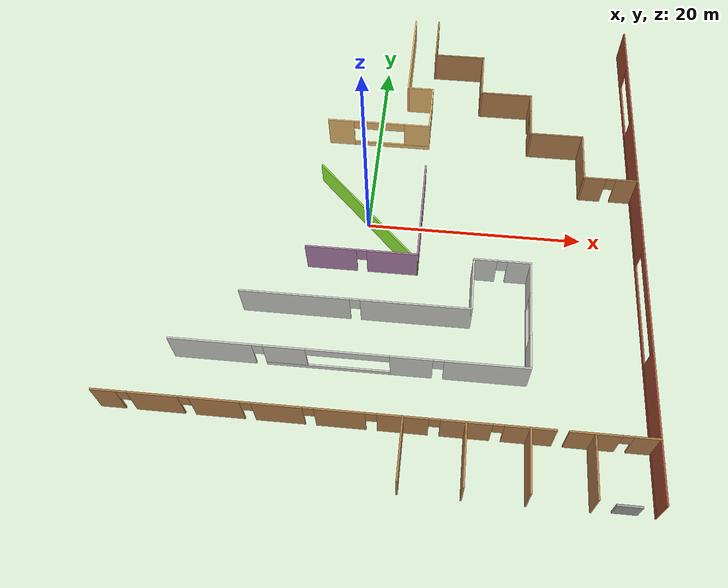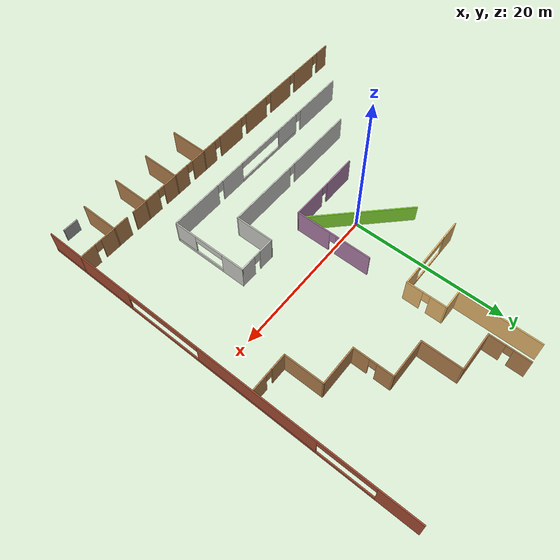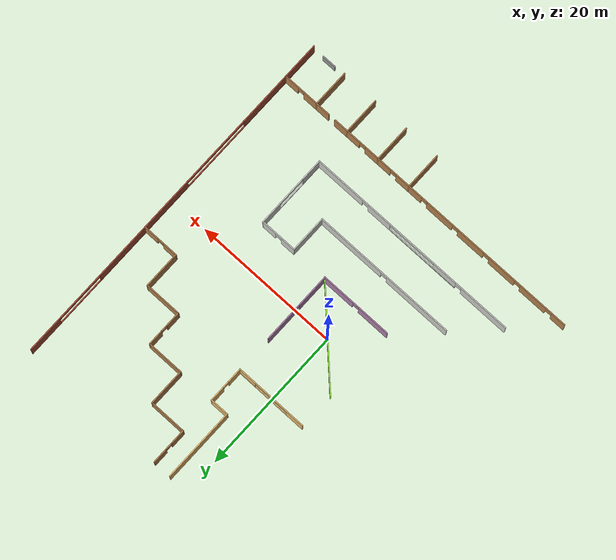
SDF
<sdf version="1.7">
 <model name="office__space">
  <pose>-0.015532 -0.015532 0 0 -0 0</pose>
  <link name="Wall_1">
   <pose>25.0155 0.015532 0 0 -0 -1.5708</pose>
   <visual name="Wall_1_Visual_0">
    <pose>-22.5375 0 1.75 0 -0 0</pose>
    <geometry><box><size>5.075 0.15 3.5</size></box></geometry>
    <material>
     <script><uri>file://media/materials/scripts/gazebo.material</uri><name>Gazebo/Bricks</name></script>
     <ambient>1 1 1 1</ambient>
    </material>
    <meta><layer>0</layer></meta>
   </visual>
   <collision name="Wall_1_Collision_0">
    <geometry><box><size>5.075 0.15 3.5</size></box></geometry>
    <pose>-22.5375 0 1.75 0 -0 0</pose>
   </collision>
   <visual name="Wall_1_Visual_1">
    <pose>2.5375 0 0.25 0 -0 0</pose>
    <geometry><box><size>45.075 0.15 0.5</size></box></geometry>
    <material>
     <script><uri>file://media/materials/scripts/gazebo.material</uri><name>Gazebo/Bricks</name></script>
     <ambient>1 1 1 1</ambient>
    </material>
    <meta><layer>0</layer></meta>
   </visual>
   <collision name="Wall_1_Collision_1">
    <geometry><box><size>45.075 0.15 0.5</size></box></geometry>
    <pose>2.5375 0 0.25 0 -0 0</pose>
   </collision>
   <visual name="Wall_1_Visual_2">
    <pose>-5.25 0 2 0 -0 0</pose>
    <geometry><box><size>15.5 0.15 3</size></box></geometry>
    <material>
     <script><uri>file://media/materials/scripts/gazebo.material</uri><name>Gazebo/Bricks</name></script>
     <ambient>1 1 1 1</ambient>
    </material>
    <meta><layer>0</layer></meta>
   </visual>
   <collision name="Wall_1_Collision_2">
    <geometry><box><size>15.5 0.15 3</size></box></geometry>
    <pose>-5.25 0 2 0 -0 0</pose>
   </collision>
   <visual name="Wall_1_Visual_3">
    <pose>18.7875 0 2 0 -0 0</pose>
    <geometry><box><size>12.575 0.15 3</size></box></geometry>
    <material>
     <script><uri>file://media/materials/scripts/gazebo.material</uri><name>Gazebo/Bricks</name></script>
     <ambient>1 1 1 1</ambient>
    </material>
    <meta><layer>0</layer></meta>
   </visual>
   <collision name="Wall_1_Collision_3">
    <geometry><box><size>12.575 0.15 3</size></box></geometry>
    <pose>18.7875 0 2 0 -0 0</pose>
   </collision>
   <visual name="Wall_1_Visual_4">
    <pose>-16.5 0 3 0 -0 0</pose>
    <geometry><box><size>7 0.15 1</size></box></geometry>
    <material>
     <script><uri>file://media/materials/scripts/gazebo.material</uri><name>Gazebo/Bricks</name></script>
     <ambient>1 1 1 1</ambient>
    </material>
    <meta><layer>0</layer></meta>
   </visual>
   <collision name="Wall_1_Collision_4">
    <geometry><box><size>7 0.15 1</size></box></geometry>
    <pose>-16.5 0 3 0 -0 0</pose>
   </collision>
   <visual name="Wall_1_Visual_5">
    <pose>7.5 0 3 0 -0 0</pose>
    <geometry><box><size>10 0.15 1</size></box></geometry>
    <material>
     <script><uri>file://media/materials/scripts/gazebo.material</uri><name>Gazebo/Bricks</name></script>
     <ambient>1 1 1 1</ambient>
    </material>
    <meta><layer>0</layer></meta>
   </visual>
   <collision name="Wall_1_Collision_5">
    <geometry><box><size>10 0.15 1</size></box></geometry>
    <pose>7.5 0 3 0 -0 0</pose>
   </collision>
  </link>
  <link name="Wall_21">
   <collision name="Wall_21_Collision">
    <geometry><box><size>5.15 0.15 3.5</size></box></geometry>
    <pose>0 0 1.75 0 -0 0</pose>
   </collision>
   <visual name="Wall_21_Visual">
    <pose>0 0 1.75 0 -0 0</pose>
    <geometry><box><size>5.15 0.15 3.5</size></box></geometry>
    <material>
     <script><uri>file://media/materials/scripts/gazebo.material</uri><name>Gazebo/Wood</name></script>
     <ambient>1 1 1 1</ambient>
    </material>
    <meta><layer>0</layer></meta>
   </visual>
   <pose>20.0155 -22.4845 0 0 -0 1.5708</pose>
  </link>
  <link name="Wall_23">
   <collision name="Wall_23_Collision">
    <geometry><box><size>5.15 0.15 3.5</size></box></geometry>
    <pose>0 0 1.75 0 -0 0</pose>
   </collision>
   <visual name="Wall_23_Visual">
    <pose>0 0 1.75 0 -0 0</pose>
    <geometry><box><size>5.15 0.15 3.5</size></box></geometry>
    <material>
     <script><uri>file://media/materials/scripts/gazebo.material</uri><name>Gazebo/Wood</name></script>
     <ambient>1 1 1 1</ambient>
    </material>
    <meta><layer>0</layer></meta>
   </visual>
   <pose>15.0155 -22.4845 0 0 -0 1.5708</pose>
  </link>
  <link name="Wall_25">
   <collision name="Wall_25_Collision">
    <geometry><box><size>5.15 0.15 3.5</size></box></geometry>
    <pose>0 0 1.75 0 -0 0</pose>
   </collision>
   <visual name="Wall_25_Visual">
    <pose>0 0 1.75 0 -0 0</pose>
    <geometry><box><size>5.15 0.15 3.5</size></box></geometry>
    <material>
     <script><uri>file://media/materials/scripts/gazebo.material</uri><name>Gazebo/Wood</name></script>
     <ambient>1 1 1 1</ambient>
    </material>
    <meta><layer>0</layer></meta>
   </visual>
   <pose>10.0155 -22.4845 0 0 -0 1.5708</pose>
  </link>
  <link name="Wall_27">
   <collision name="Wall_27_Collision">
    <geometry><box><size>5.15 0.15 3.5</size></box></geometry>
    <pose>0 0 1.75 0 -0 0</pose>
   </collision>
   <visual name="Wall_27_Visual">
    <pose>0 0 1.75 0 -0 0</pose>
    <geometry><box><size>5.15 0.15 3.5</size></box></geometry>
    <material>
     <script><uri>file://media/materials/scripts/gazebo.material</uri><name>Gazebo/Wood</name></script>
     <ambient>1 1 1 1</ambient>
    </material>
    <meta><layer>0</layer></meta>
   </visual>
   <pose>5.01553 -22.4845 0 0 -0 1.5708</pose>
  </link>
  <link name="Wall_39">
   <pose>0.015532 -4.98447 0 0 -0 0</pose>
   <visual name="Wall_39_Visual_0">
    <pose>-2.7625 0 1.75 0 -0 0</pose>
    <geometry><box><size>4.625 0.15 3.5</size></box></geometry>
    <material>
     <script><uri>file://media/materials/scripts/gazebo.material</uri><name>Gazebo/Grey</name></script>
     <ambient>0.678431 0.498039 0.658824 1</ambient>
    </material>
    <meta><layer>0</layer></meta>
   </visual>
   <collision name="Wall_39_Collision_0">
    <geometry><box><size>4.625 0.15 3.5</size></box></geometry>
    <pose>-2.7625 0 1.75 0 -0 0</pose>
   </collision>
   <visual name="Wall_39_Visual_1">
    <pose>2.7625 0 1.75 0 -0 0</pose>
    <geometry><box><size>4.625 0.15 3.5</size></box></geometry>
    <material>
     <script><uri>file://media/materials/scripts/gazebo.material</uri><name>Gazebo/Grey</name></script>
     <ambient>0.678431 0.498039 0.658824 1</ambient>
    </material>
    <meta><layer>0</layer></meta>
   </visual>
   <collision name="Wall_39_Collision_1">
    <geometry><box><size>4.625 0.15 3.5</size></box></geometry>
    <pose>2.7625 0 1.75 0 -0 0</pose>
   </collision>
   <visual name="Wall_39_Visual_2">
    <pose>0 0 2.75 0 -0 0</pose>
    <geometry><box><size>0.9 0.15 1.5</size></box></geometry>
    <material>
     <script><uri>file://media/materials/scripts/gazebo.material</uri><name>Gazebo/Grey</name></script>
     <ambient>0.678431 0.498039 0.658824 1</ambient>
    </material>
    <meta><layer>0</layer></meta>
   </visual>
   <collision name="Wall_39_Collision_2">
    <geometry><box><size>0.9 0.15 1.5</size></box></geometry>
    <pose>0 0 2.75 0 -0 0</pose>
   </collision>
  </link>
  <link name="Wall_40">
   <collision name="Wall_40_Collision">
    <geometry><box><size>14.2921 0.15 2.5</size></box></geometry>
    <pose>0 0 1.25 0 -0 0</pose>
   </collision>
   <visual name="Wall_40_Visual">
    <pose>0 0 1.25 0 -0 0</pose>
    <geometry><box><size>14.2921 0.15 2.5</size></box></geometry>
    <material>
     <script><uri>file://media/materials/scripts/gazebo.material</uri><name>Gazebo/Grey</name></script>
     <ambient>0.541176 0.886275 0.203922 1</ambient>
    </material>
    <meta><layer>0</layer></meta>
   </visual>
   <pose>0.015532 0.015532 0 0 -0 2.35619</pose>
  </link>
  <link name="Wall_43">
   <pose>5.01553 0.015532 0 0 -0 -1.5708</pose>
   <visual name="Wall_43_Visual_0">
    <pose>-2.7625 0 1.75 0 -0 0</pose>
    <geometry><box><size>4.625 0.15 3.5</size></box></geometry>
    <material>
     <script><uri>file://media/materials/scripts/gazebo.material</uri><name>Gazebo/Grey</name></script>
     <ambient>0.678431 0.498039 0.658824 1</ambient>
    </material>
    <meta><layer>0</layer></meta>
   </visual>
   <collision name="Wall_43_Collision_0">
    <geometry><box><size>4.625 0.15 3.5</size></box></geometry>
    <pose>-2.7625 0 1.75 0 -0 0</pose>
   </collision>
   <visual name="Wall_43_Visual_1">
    <pose>2.7625 0 1.75 0 -0 0</pose>
    <geometry><box><size>4.625 0.15 3.5</size></box></geometry>
    <material>
     <script><uri>file://media/materials/scripts/gazebo.material</uri><name>Gazebo/Grey</name></script>
     <ambient>0.678431 0.498039 0.658824 1</ambient>
    </material>
    <meta><layer>0</layer></meta>
   </visual>
   <collision name="Wall_43_Collision_1">
    <geometry><box><size>4.625 0.15 3.5</size></box></geometry>
    <pose>2.7625 0 1.75 0 -0 0</pose>
   </collision>
   <visual name="Wall_43_Visual_2">
    <pose>0 0 2.75 0 -0 0</pose>
    <geometry><box><size>0.9 0.15 1.5</size></box></geometry>
    <material>
     <script><uri>file://media/materials/scripts/gazebo.material</uri><name>Gazebo/Grey</name></script>
     <ambient>0.678431 0.498039 0.658824 1</ambient>
    </material>
    <meta><layer>0</layer></meta>
   </visual>
   <collision name="Wall_43_Collision_2">
    <geometry><box><size>0.9 0.15 1.5</size></box></geometry>
    <pose>0 0 2.75 0 -0 0</pose>
   </collision>
  </link>
  <link name="Wall_49">
   <pose>22.5155 5.01553 0 0 -0 3.14159</pose>
   <visual name="Wall_49_Visual_0">
    <pose>-1.5125 0 1.75 0 -0 0</pose>
    <geometry><box><size>2.125 0.15 3.5</size></box></geometry>
    <material>
     <script><uri>file://media/materials/scripts/gazebo.material</uri><name>Gazebo/Wood</name></script>
     <ambient>1 1 1 1</ambient>
    </material>
    <meta><layer>0</layer></meta>
   </visual>
   <collision name="Wall_49_Collision_0">
    <geometry><box><size>2.125 0.15 3.5</size></box></geometry>
    <pose>-1.5125 0 1.75 0 -0 0</pose>
   </collision>
   <visual name="Wall_49_Visual_1">
    <pose>1.5125 0 1.75 0 -0 0</pose>
    <geometry><box><size>2.125 0.15 3.5</size></box></geometry>
    <material>
     <script><uri>file://media/materials/scripts/gazebo.material</uri><name>Gazebo/Wood</name></script>
     <ambient>1 1 1 1</ambient>
    </material>
    <meta><layer>0</layer></meta>
   </visual>
   <collision name="Wall_49_Collision_1">
    <geometry><box><size>2.125 0.15 3.5</size></box></geometry>
    <pose>1.5125 0 1.75 0 -0 0</pose>
   </collision>
   <visual name="Wall_49_Visual_2">
    <pose>-0 0 2.75 0 -0 0</pose>
    <geometry><box><size>0.9 0.15 1.5</size></box></geometry>
    <material>
     <script><uri>file://media/materials/scripts/gazebo.material</uri><name>Gazebo/Wood</name></script>
     <ambient>1 1 1 1</ambient>
    </material>
    <meta><layer>0</layer></meta>
   </visual>
   <collision name="Wall_49_Collision_2">
    <geometry><box><size>0.9 0.15 1.5</size></box></geometry>
    <pose>-0 0 2.75 0 -0 0</pose>
   </collision>
  </link>
  <link name="Wall_50">
   <collision name="Wall_50_Collision">
    <geometry><box><size>5.15 0.15 3.5</size></box></geometry>
    <pose>0 0 1.75 0 -0 0</pose>
   </collision>
   <visual name="Wall_50_Visual">
    <pose>0 0 1.75 0 -0 0</pose>
    <geometry><box><size>5.15 0.15 3.5</size></box></geometry>
    <material>
     <script><uri>file://media/materials/scripts/gazebo.material</uri><name>Gazebo/Wood</name></script>
     <ambient>1 1 1 1</ambient>
    </material>
    <meta><layer>0</layer></meta>
   </visual>
   <pose>20.0155 7.51553 0 0 -0 1.5708</pose>
  </link>
  <link name="Wall_51">
   <collision name="Wall_51_Collision">
    <geometry><box><size>5.15 0.15 3.5</size></box></geometry>
    <pose>0 0 1.75 0 -0 0</pose>
   </collision>
   <visual name="Wall_51_Visual">
    <pose>0 0 1.75 0 -0 0</pose>
    <geometry><box><size>5.15 0.15 3.5</size></box></geometry>
    <material>
     <script><uri>file://media/materials/scripts/gazebo.material</uri><name>Gazebo/Wood</name></script>
     <ambient>1 1 1 1</ambient>
    </material>
    <meta><layer>0</layer></meta>
   </visual>
   <pose>17.5155 10.0155 0 0 -0 3.14159</pose>
  </link>
  <link name="Wall_52">
   <pose>15.0155 12.5155 0 0 -0 1.5708</pose>
   <visual name="Wall_52_Visual_0">
    <pose>-1.5125 0 1.75 0 -0 0</pose>
    <geometry><box><size>2.125 0.15 3.5</size></box></geometry>
    <material>
     <script><uri>file://media/materials/scripts/gazebo.material</uri><name>Gazebo/Wood</name></script>
     <ambient>1 1 1 1</ambient>
    </material>
    <meta><layer>0</layer></meta>
   </visual>
   <collision name="Wall_52_Collision_0">
    <geometry><box><size>2.125 0.15 3.5</size></box></geometry>
    <pose>-1.5125 0 1.75 0 -0 0</pose>
   </collision>
   <visual name="Wall_52_Visual_1">
    <pose>1.5125 0 1.75 0 -0 0</pose>
    <geometry><box><size>2.125 0.15 3.5</size></box></geometry>
    <material>
     <script><uri>file://media/materials/scripts/gazebo.material</uri><name>Gazebo/Wood</name></script>
     <ambient>1 1 1 1</ambient>
    </material>
    <meta><layer>0</layer></meta>
   </visual>
   <collision name="Wall_52_Collision_1">
    <geometry><box><size>2.125 0.15 3.5</size></box></geometry>
    <pose>1.5125 0 1.75 0 -0 0</pose>
   </collision>
   <visual name="Wall_52_Visual_2">
    <pose>-0 0 2.75 0 -0 0</pose>
    <geometry><box><size>0.9 0.15 1.5</size></box></geometry>
    <material>
     <script><uri>file://media/materials/scripts/gazebo.material</uri><name>Gazebo/Wood</name></script>
     <ambient>1 1 1 1</ambient>
    </material>
    <meta><layer>0</layer></meta>
   </visual>
   <collision name="Wall_52_Collision_2">
    <geometry><box><size>0.9 0.15 1.5</size></box></geometry>
    <pose>-0 0 2.75 0 -0 0</pose>
   </collision>
  </link>
  <link name="Wall_53">
   <collision name="Wall_53_Collision">
    <geometry><box><size>5.15 0.15 3.5</size></box></geometry>
    <pose>0 0 1.75 0 -0 0</pose>
   </collision>
   <visual name="Wall_53_Visual">
    <pose>0 0 1.75 0 -0 0</pose>
    <geometry><box><size>5.15 0.15 3.5</size></box></geometry>
    <material>
     <script><uri>file://media/materials/scripts/gazebo.material</uri><name>Gazebo/Wood</name></script>
     <ambient>1 1 1 1</ambient>
    </material>
    <meta><layer>0</layer></meta>
   </visual>
   <pose>12.5155 15.0155 0 0 -0 3.14159</pose>
  </link>
  <link name="Wall_54">
   <collision name="Wall_54_Collision">
    <geometry><box><size>5.15 0.15 3.5</size></box></geometry>
    <pose>0 0 1.75 0 -0 0</pose>
   </collision>
   <visual name="Wall_54_Visual">
    <pose>0 0 1.75 0 -0 0</pose>
    <geometry><box><size>5.15 0.15 3.5</size></box></geometry>
    <material>
     <script><uri>file://media/materials/scripts/gazebo.material</uri><name>Gazebo/Wood</name></script>
     <ambient>1 1 1 1</ambient>
    </material>
    <meta><layer>0</layer></meta>
   </visual>
   <pose>10.0155 17.5155 0 0 -0 1.5708</pose>
  </link>
  <link name="Wall_55">
   <collision name="Wall_55_Collision">
    <geometry><box><size>5.15 0.15 3.5</size></box></geometry>
    <pose>0 0 1.75 0 -0 0</pose>
   </collision>
   <visual name="Wall_55_Visual">
    <pose>0 0 1.75 0 -0 0</pose>
    <geometry><box><size>5.15 0.15 3.5</size></box></geometry>
    <material>
     <script><uri>file://media/materials/scripts/gazebo.material</uri><name>Gazebo/Wood</name></script>
     <ambient>1 1 1 1</ambient>
    </material>
    <meta><layer>0</layer></meta>
   </visual>
   <pose>7.51553 20.0155 0 0 -0 3.14159</pose>
  </link>
  <link name="Wall_56">
   <pose>5.01553 22.5155 0 0 -0 1.5708</pose>
   <visual name="Wall_56_Visual_0">
    <pose>-1.5125 0 1.75 0 -0 0</pose>
    <geometry><box><size>2.125 0.15 3.5</size></box></geometry>
    <material>
     <script><uri>file://media/materials/scripts/gazebo.material</uri><name>Gazebo/Wood</name></script>
     <ambient>1 1 1 1</ambient>
    </material>
    <meta><layer>0</layer></meta>
   </visual>
   <collision name="Wall_56_Collision_0">
    <geometry><box><size>2.125 0.15 3.5</size></box></geometry>
    <pose>-1.5125 0 1.75 0 -0 0</pose>
   </collision>
   <visual name="Wall_56_Visual_1">
    <pose>1.5125 0 1.75 0 -0 0</pose>
    <geometry><box><size>2.125 0.15 3.5</size></box></geometry>
    <material>
     <script><uri>file://media/materials/scripts/gazebo.material</uri><name>Gazebo/Wood</name></script>
     <ambient>1 1 1 1</ambient>
    </material>
    <meta><layer>0</layer></meta>
   </visual>
   <collision name="Wall_56_Collision_1">
    <geometry><box><size>2.125 0.15 3.5</size></box></geometry>
    <pose>1.5125 0 1.75 0 -0 0</pose>
   </collision>
   <visual name="Wall_56_Visual_2">
    <pose>-0 0 2.75 0 -0 0</pose>
    <geometry><box><size>0.9 0.15 1.5</size></box></geometry>
    <material>
     <script><uri>file://media/materials/scripts/gazebo.material</uri><name>Gazebo/Wood</name></script>
     <ambient>1 1 1 1</ambient>
    </material>
    <meta><layer>0</layer></meta>
   </visual>
   <collision name="Wall_56_Collision_2">
    <geometry><box><size>0.9 0.15 1.5</size></box></geometry>
    <pose>-0 0 2.75 0 -0 0</pose>
   </collision>
  </link>
  <link name="Wall_6">
   <pose>2.51553 -19.9845 0 0 -0 3.14159</pose>
   <visual name="Wall_6_Visual_0">
    <pose>-21.5125 0 1.75 0 -0 0</pose>
    <geometry><box><size>2.125 0.15 3.5</size></box></geometry>
    <material>
     <script><uri>file://media/materials/scripts/gazebo.material</uri><name>Gazebo/Wood</name></script>
     <ambient>1 1 1 1</ambient>
    </material>
    <meta><layer>0</layer></meta>
   </visual>
   <collision name="Wall_6_Collision_0">
    <geometry><box><size>2.125 0.15 3.5</size></box></geometry>
    <pose>-21.5125 0 1.75 0 -0 0</pose>
   </collision>
   <visual name="Wall_6_Visual_1">
    <pose>-17.5 0 1.75 0 -0 0</pose>
    <geometry><box><size>4.1 0.15 3.5</size></box></geometry>
    <material>
     <script><uri>file://media/materials/scripts/gazebo.material</uri><name>Gazebo/Wood</name></script>
     <ambient>1 1 1 1</ambient>
    </material>
    <meta><layer>0</layer></meta>
   </visual>
   <collision name="Wall_6_Collision_1">
    <geometry><box><size>4.1 0.15 3.5</size></box></geometry>
    <pose>-17.5 0 1.75 0 -0 0</pose>
   </collision>
   <visual name="Wall_6_Visual_2">
    <pose>-12.5 0 1.75 0 -0 0</pose>
    <geometry><box><size>4.1 0.15 3.5</size></box></geometry>
    <material>
     <script><uri>file://media/materials/scripts/gazebo.material</uri><name>Gazebo/Wood</name></script>
     <ambient>1 1 1 1</ambient>
    </material>
    <meta><layer>0</layer></meta>
   </visual>
   <collision name="Wall_6_Collision_2">
    <geometry><box><size>4.1 0.15 3.5</size></box></geometry>
    <pose>-12.5 0 1.75 0 -0 0</pose>
   </collision>
   <visual name="Wall_6_Visual_3">
    <pose>-7.50424 0 1.75 0 -0 0</pose>
    <geometry><box><size>4.09152 0.15 3.5</size></box></geometry>
    <material>
     <script><uri>file://media/materials/scripts/gazebo.material</uri><name>Gazebo/Wood</name></script>
     <ambient>1 1 1 1</ambient>
    </material>
    <meta><layer>0</layer></meta>
   </visual>
   <collision name="Wall_6_Collision_3">
    <geometry><box><size>4.09152 0.15 3.5</size></box></geometry>
    <pose>-7.50424 0 1.75 0 -0 0</pose>
   </collision>
   <visual name="Wall_6_Visual_4">
    <pose>-2.50271 0 1.75 0 -0 0</pose>
    <geometry><box><size>4.11154 0.15 3.5</size></box></geometry>
    <material>
     <script><uri>file://media/materials/scripts/gazebo.material</uri><name>Gazebo/Wood</name></script>
     <ambient>1 1 1 1</ambient>
    </material>
    <meta><layer>0</layer></meta>
   </visual>
   <collision name="Wall_6_Collision_4">
    <geometry><box><size>4.11154 0.15 3.5</size></box></geometry>
    <pose>-2.50271 0 1.75 0 -0 0</pose>
   </collision>
   <visual name="Wall_6_Visual_5">
    <pose>2.50153 0 1.75 0 -0 0</pose>
    <geometry><box><size>4.09694 0.15 3.5</size></box></geometry>
    <material>
     <script><uri>file://media/materials/scripts/gazebo.material</uri><name>Gazebo/Wood</name></script>
     <ambient>1 1 1 1</ambient>
    </material>
    <meta><layer>0</layer></meta>
   </visual>
   <collision name="Wall_6_Collision_5">
    <geometry><box><size>4.09694 0.15 3.5</size></box></geometry>
    <pose>2.50153 0 1.75 0 -0 0</pose>
   </collision>
   <visual name="Wall_6_Visual_6">
    <pose>7.5 0 1.75 0 -0 0</pose>
    <geometry><box><size>4.1 0.15 3.5</size></box></geometry>
    <material>
     <script><uri>file://media/materials/scripts/gazebo.material</uri><name>Gazebo/Wood</name></script>
     <ambient>1 1 1 1</ambient>
    </material>
    <meta><layer>0</layer></meta>
   </visual>
   <collision name="Wall_6_Collision_6">
    <geometry><box><size>4.1 0.15 3.5</size></box></geometry>
    <pose>7.5 0 1.75 0 -0 0</pose>
   </collision>
   <visual name="Wall_6_Visual_7">
    <pose>12.5 0 1.75 0 -0 0</pose>
    <geometry><box><size>4.1 0.15 3.5</size></box></geometry>
    <material>
     <script><uri>file://media/materials/scripts/gazebo.material</uri><name>Gazebo/Wood</name></script>
     <ambient>1 1 1 1</ambient>
    </material>
    <meta><layer>0</layer></meta>
   </visual>
   <collision name="Wall_6_Collision_7">
    <geometry><box><size>4.1 0.15 3.5</size></box></geometry>
    <pose>12.5 0 1.75 0 -0 0</pose>
   </collision>
   <visual name="Wall_6_Visual_8">
    <pose>17.5 0 1.75 0 -0 0</pose>
    <geometry><box><size>4.1 0.15 3.5</size></box></geometry>
    <material>
     <script><uri>file://media/materials/scripts/gazebo.material</uri><name>Gazebo/Wood</name></script>
     <ambient>1 1 1 1</ambient>
    </material>
    <meta><layer>0</layer></meta>
   </visual>
   <collision name="Wall_6_Collision_8">
    <geometry><box><size>4.1 0.15 3.5</size></box></geometry>
    <pose>17.5 0 1.75 0 -0 0</pose>
   </collision>
   <visual name="Wall_6_Visual_9">
    <pose>21.5125 0 1.75 0 -0 0</pose>
    <geometry><box><size>2.125 0.15 3.5</size></box></geometry>
    <material>
     <script><uri>file://media/materials/scripts/gazebo.material</uri><name>Gazebo/Wood</name></script>
     <ambient>1 1 1 1</ambient>
    </material>
    <meta><layer>0</layer></meta>
   </visual>
   <collision name="Wall_6_Collision_9">
    <geometry><box><size>2.125 0.15 3.5</size></box></geometry>
    <pose>21.5125 0 1.75 0 -0 0</pose>
   </collision>
   <visual name="Wall_6_Visual_10">
    <pose>-20 0 2.75 0 -0 0</pose>
    <geometry><box><size>0.9 0.15 1.5</size></box></geometry>
    <material>
     <script><uri>file://media/materials/scripts/gazebo.material</uri><name>Gazebo/Wood</name></script>
     <ambient>1 1 1 1</ambient>
    </material>
    <meta><layer>0</layer></meta>
   </visual>
   <collision name="Wall_6_Collision_10">
    <geometry><box><size>0.9 0.15 1.5</size></box></geometry>
    <pose>-20 0 2.75 0 -0 0</pose>
   </collision>
   <visual name="Wall_6_Visual_11">
    <pose>-15.45 0 2.75 0 -0 0</pose>
    <geometry><box><size>0 0.15 1.5</size></box></geometry>
    <material>
     <script><uri>file://media/materials/scripts/gazebo.material</uri><name>Gazebo/Wood</name></script>
     <ambient>1 1 1 1</ambient>
    </material>
    <meta><layer>0</layer></meta>
   </visual>
   <collision name="Wall_6_Collision_11">
    <geometry><box><size>0 0.15 1.5</size></box></geometry>
    <pose>-15.45 0 2.75 0 -0 0</pose>
   </collision>
   <visual name="Wall_6_Visual_12">
    <pose>-10 0 2.75 0 -0 0</pose>
    <geometry><box><size>0.9 0.15 1.5</size></box></geometry>
    <material>
     <script><uri>file://media/materials/scripts/gazebo.material</uri><name>Gazebo/Wood</name></script>
     <ambient>1 1 1 1</ambient>
    </material>
    <meta><layer>0</layer></meta>
   </visual>
   <collision name="Wall_6_Collision_12">
    <geometry><box><size>0.9 0.15 1.5</size></box></geometry>
    <pose>-10 0 2.75 0 -0 0</pose>
   </collision>
   <visual name="Wall_6_Visual_13">
    <pose>-5.00848 0 2.75 0 -0 0</pose>
    <geometry><box><size>0.9 0.15 1.5</size></box></geometry>
    <material>
     <script><uri>file://media/materials/scripts/gazebo.material</uri><name>Gazebo/Wood</name></script>
     <ambient>1 1 1 1</ambient>
    </material>
    <meta><layer>0</layer></meta>
   </visual>
   <collision name="Wall_6_Collision_13">
    <geometry><box><size>0.9 0.15 1.5</size></box></geometry>
    <pose>-5.00848 0 2.75 0 -0 0</pose>
   </collision>
   <visual name="Wall_6_Visual_14">
    <pose>0.003065 0 2.75 0 -0 0</pose>
    <geometry><box><size>0.9 0.15 1.5</size></box></geometry>
    <material>
     <script><uri>file://media/materials/scripts/gazebo.material</uri><name>Gazebo/Wood</name></script>
     <ambient>1 1 1 1</ambient>
    </material>
    <meta><layer>0</layer></meta>
   </visual>
   <collision name="Wall_6_Collision_14">
    <geometry><box><size>0.9 0.15 1.5</size></box></geometry>
    <pose>0.003065 0 2.75 0 -0 0</pose>
   </collision>
   <visual name="Wall_6_Visual_15">
    <pose>5 0 2.75 0 -0 0</pose>
    <geometry><box><size>0.9 0.15 1.5</size></box></geometry>
    <material>
     <script><uri>file://media/materials/scripts/gazebo.material</uri><name>Gazebo/Wood</name></script>
     <ambient>1 1 1 1</ambient>
    </material>
    <meta><layer>0</layer></meta>
   </visual>
   <collision name="Wall_6_Collision_15">
    <geometry><box><size>0.9 0.15 1.5</size></box></geometry>
    <pose>5 0 2.75 0 -0 0</pose>
   </collision>
   <visual name="Wall_6_Visual_16">
    <pose>10 0 2.75 0 -0 0</pose>
    <geometry><box><size>0.9 0.15 1.5</size></box></geometry>
    <material>
     <script><uri>file://media/materials/scripts/gazebo.material</uri><name>Gazebo/Wood</name></script>
     <ambient>1 1 1 1</ambient>
    </material>
    <meta><layer>0</layer></meta>
   </visual>
   <collision name="Wall_6_Collision_16">
    <geometry><box><size>0.9 0.15 1.5</size></box></geometry>
    <pose>10 0 2.75 0 -0 0</pose>
   </collision>
   <visual name="Wall_6_Visual_17">
    <pose>15 0 2.75 0 -0 0</pose>
    <geometry><box><size>0.9 0.15 1.5</size></box></geometry>
    <material>
     <script><uri>file://media/materials/scripts/gazebo.material</uri><name>Gazebo/Wood</name></script>
     <ambient>1 1 1 1</ambient>
    </material>
    <meta><layer>0</layer></meta>
   </visual>
   <collision name="Wall_6_Collision_17">
    <geometry><box><size>0.9 0.15 1.5</size></box></geometry>
    <pose>15 0 2.75 0 -0 0</pose>
   </collision>
   <visual name="Wall_6_Visual_18">
    <pose>20 0 2.75 0 -0 0</pose>
    <geometry><box><size>0.9 0.15 1.5</size></box></geometry>
    <material>
     <script><uri>file://media/materials/scripts/gazebo.material</uri><name>Gazebo/Wood</name></script>
     <ambient>1 1 1 1</ambient>
    </material>
    <meta><layer>0</layer></meta>
   </visual>
   <collision name="Wall_6_Collision_18">
    <geometry><box><size>0.9 0.15 1.5</size></box></geometry>
    <pose>20 0 2.75 0 -0 0</pose>
   </collision>
  </link>
  <link name="Wall_62">
   <pose>0.015532 -9.98447 0 0 -0 0</pose>
   <visual name="Wall_62_Visual_0">
    <pose>-5.2625 0 1.75 0 -0 0</pose>
    <geometry><box><size>9.625 0.15 3.5</size></box></geometry>
    <material>
     <script><uri>file://media/materials/scripts/gazebo.material</uri><name>Gazebo/CeilingTiled</name></script>
     <ambient>1 1 1 1</ambient>
    </material>
    <meta><layer>0</layer></meta>
   </visual>
   <collision name="Wall_62_Collision_0">
    <geometry><box><size>9.625 0.15 3.5</size></box></geometry>
    <pose>-5.2625 0 1.75 0 -0 0</pose>
   </collision>
   <visual name="Wall_62_Visual_1">
    <pose>5.2625 0 1.75 0 -0 0</pose>
    <geometry><box><size>9.625 0.15 3.5</size></box></geometry>
    <material>
     <script><uri>file://media/materials/scripts/gazebo.material</uri><name>Gazebo/CeilingTiled</name></script>
     <ambient>1 1 1 1</ambient>
    </material>
    <meta><layer>0</layer></meta>
   </visual>
   <collision name="Wall_62_Collision_1">
    <geometry><box><size>9.625 0.15 3.5</size></box></geometry>
    <pose>5.2625 0 1.75 0 -0 0</pose>
   </collision>
   <visual name="Wall_62_Visual_2">
    <pose>0 0 2.75 0 -0 0</pose>
    <geometry><box><size>0.9 0.15 1.5</size></box></geometry>
    <material>
     <script><uri>file://media/materials/scripts/gazebo.material</uri><name>Gazebo/CeilingTiled</name></script>
     <ambient>1 1 1 1</ambient>
    </material>
    <meta><layer>0</layer></meta>
   </visual>
   <collision name="Wall_62_Collision_2">
    <geometry><box><size>0.9 0.15 1.5</size></box></geometry>
    <pose>0 0 2.75 0 -0 0</pose>
   </collision>
  </link>
  <link name="Wall_63">
   <collision name="Wall_63_Collision">
    <geometry><box><size>5.15 0.15 3.5</size></box></geometry>
    <pose>0 0 1.75 0 -0 0</pose>
   </collision>
   <visual name="Wall_63_Visual">
    <pose>0 0 1.75 0 -0 0</pose>
    <geometry><box><size>5.15 0.15 3.5</size></box></geometry>
    <material>
     <script><uri>file://media/materials/scripts/gazebo.material</uri><name>Gazebo/CeilingTiled</name></script>
     <ambient>1 1 1 1</ambient>
    </material>
    <meta><layer>0</layer></meta>
   </visual>
   <pose>10.0155 -7.48447 0 0 -0 1.5708</pose>
  </link>
  <link name="Wall_64">
   <pose>12.5155 -4.98447 0 0 -0 0</pose>
   <visual name="Wall_64_Visual_0">
    <pose>-1.5125 0 1.75 0 -0 0</pose>
    <geometry><box><size>2.125 0.15 3.5</size></box></geometry>
    <material>
     <script><uri>file://media/materials/scripts/gazebo.material</uri><name>Gazebo/CeilingTiled</name></script>
     <ambient>1 1 1 1</ambient>
    </material>
    <meta><layer>0</layer></meta>
   </visual>
   <collision name="Wall_64_Collision_0">
    <geometry><box><size>2.125 0.15 3.5</size></box></geometry>
    <pose>-1.5125 0 1.75 0 -0 0</pose>
   </collision>
   <visual name="Wall_64_Visual_1">
    <pose>1.5125 0 1.75 0 -0 0</pose>
    <geometry><box><size>2.125 0.15 3.5</size></box></geometry>
    <material>
     <script><uri>file://media/materials/scripts/gazebo.material</uri><name>Gazebo/CeilingTiled</name></script>
     <ambient>1 1 1 1</ambient>
    </material>
    <meta><layer>0</layer></meta>
   </visual>
   <collision name="Wall_64_Collision_1">
    <geometry><box><size>2.125 0.15 3.5</size></box></geometry>
    <pose>1.5125 0 1.75 0 -0 0</pose>
   </collision>
   <visual name="Wall_64_Visual_2">
    <pose>-0 0 2.75 0 -0 0</pose>
    <geometry><box><size>0.9 0.15 1.5</size></box></geometry>
    <material>
     <script><uri>file://media/materials/scripts/gazebo.material</uri><name>Gazebo/CeilingTiled</name></script>
     <ambient>1 1 1 1</ambient>
    </material>
    <meta><layer>0</layer></meta>
   </visual>
   <collision name="Wall_64_Collision_2">
    <geometry><box><size>0.9 0.15 1.5</size></box></geometry>
    <pose>-0 0 2.75 0 -0 0</pose>
   </collision>
  </link>
  <link name="Wall_65">
   <pose>15.0155 -9.98447 0 0 -0 -1.5708</pose>
   <visual name="Wall_65_Visual_0">
    <pose>-3.5375 0 1.75 0 -0 0</pose>
    <geometry><box><size>3.075 0.15 3.5</size></box></geometry>
    <material>
     <script><uri>file://media/materials/scripts/gazebo.material</uri><name>Gazebo/CeilingTiled</name></script>
     <ambient>1 1 1 1</ambient>
    </material>
    <meta><layer>0</layer></meta>
   </visual>
   <collision name="Wall_65_Collision_0">
    <geometry><box><size>3.075 0.15 3.5</size></box></geometry>
    <pose>-3.5375 0 1.75 0 -0 0</pose>
   </collision>
   <visual name="Wall_65_Visual_1">
    <pose>1.5375 0 0.25 0 -0 0</pose>
    <geometry><box><size>7.075 0.15 0.5</size></box></geometry>
    <material>
     <script><uri>file://media/materials/scripts/gazebo.material</uri><name>Gazebo/CeilingTiled</name></script>
     <ambient>1 1 1 1</ambient>
    </material>
    <meta><layer>0</layer></meta>
   </visual>
   <collision name="Wall_65_Collision_1">
    <geometry><box><size>7.075 0.15 0.5</size></box></geometry>
    <pose>1.5375 0 0.25 0 -0 0</pose>
   </collision>
   <visual name="Wall_65_Visual_2">
    <pose>3.5375 0 2 0 -0 0</pose>
    <geometry><box><size>3.075 0.15 3</size></box></geometry>
    <material>
     <script><uri>file://media/materials/scripts/gazebo.material</uri><name>Gazebo/CeilingTiled</name></script>
     <ambient>1 1 1 1</ambient>
    </material>
    <meta><layer>0</layer></meta>
   </visual>
   <collision name="Wall_65_Collision_2">
    <geometry><box><size>3.075 0.15 3</size></box></geometry>
    <pose>3.5375 0 2 0 -0 0</pose>
   </collision>
   <visual name="Wall_65_Visual_3">
    <pose>0 0 3 0 -0 0</pose>
    <geometry><box><size>4 0.15 1</size></box></geometry>
    <material>
     <script><uri>file://media/materials/scripts/gazebo.material</uri><name>Gazebo/CeilingTiled</name></script>
     <ambient>1 1 1 1</ambient>
    </material>
    <meta><layer>0</layer></meta>
   </visual>
   <collision name="Wall_65_Collision_3">
    <geometry><box><size>4 0.15 1</size></box></geometry>
    <pose>0 0 3 0 -0 0</pose>
   </collision>
  </link>
  <link name="Wall_66">
   <pose>0.015532 -14.9845 0 0 -0 3.14159</pose>
   <visual name="Wall_66_Visual_0">
    <pose>-11.5125 0 1.75 0 -0 0</pose>
    <geometry><box><size>7.125 0.15 3.5</size></box></geometry>
    <material>
     <script><uri>file://media/materials/scripts/gazebo.material</uri><name>Gazebo/CeilingTiled</name></script>
     <ambient>1 1 1 1</ambient>
    </material>
    <meta><layer>0</layer></meta>
   </visual>
   <collision name="Wall_66_Collision_0">
    <geometry><box><size>7.125 0.15 3.5</size></box></geometry>
    <pose>-11.5125 0 1.75 0 -0 0</pose>
   </collision>
   <visual name="Wall_66_Visual_1">
    <pose>-5.275 0 1.75 0 -0 0</pose>
    <geometry><box><size>3.55 0.15 3.5</size></box></geometry>
    <material>
     <script><uri>file://media/materials/scripts/gazebo.material</uri><name>Gazebo/CeilingTiled</name></script>
     <ambient>1 1 1 1</ambient>
    </material>
    <meta><layer>0</layer></meta>
   </visual>
   <collision name="Wall_66_Collision_1">
    <geometry><box><size>3.55 0.15 3.5</size></box></geometry>
    <pose>-5.275 0 1.75 0 -0 0</pose>
   </collision>
   <visual name="Wall_66_Visual_2">
    <pose>11.5125 0 1.75 0 -0 0</pose>
    <geometry><box><size>7.125 0.15 3.5</size></box></geometry>
    <material>
     <script><uri>file://media/materials/scripts/gazebo.material</uri><name>Gazebo/CeilingTiled</name></script>
     <ambient>1 1 1 1</ambient>
    </material>
    <meta><layer>0</layer></meta>
   </visual>
   <collision name="Wall_66_Collision_2">
    <geometry><box><size>7.125 0.15 3.5</size></box></geometry>
    <pose>11.5125 0 1.75 0 -0 0</pose>
   </collision>
   <visual name="Wall_66_Visual_3">
    <pose>1.775 0 0.25 0 -0 0</pose>
    <geometry><box><size>10.55 0.15 0.5</size></box></geometry>
    <material>
     <script><uri>file://media/materials/scripts/gazebo.material</uri><name>Gazebo/CeilingTiled</name></script>
     <ambient>1 1 1 1</ambient>
    </material>
    <meta><layer>0</layer></meta>
   </visual>
   <collision name="Wall_66_Collision_3">
    <geometry><box><size>10.55 0.15 0.5</size></box></geometry>
    <pose>1.775 0 0.25 0 -0 0</pose>
   </collision>
   <visual name="Wall_66_Visual_4">
    <pose>5.275 0 2 0 -0 0</pose>
    <geometry><box><size>3.55 0.15 3</size></box></geometry>
    <material>
     <script><uri>file://media/materials/scripts/gazebo.material</uri><name>Gazebo/CeilingTiled</name></script>
     <ambient>1 1 1 1</ambient>
    </material>
    <meta><layer>0</layer></meta>
   </visual>
   <collision name="Wall_66_Collision_4">
    <geometry><box><size>3.55 0.15 3</size></box></geometry>
    <pose>5.275 0 2 0 -0 0</pose>
   </collision>
   <visual name="Wall_66_Visual_5">
    <pose>-7.5 0 2.75 0 -0 0</pose>
    <geometry><box><size>0.9 0.15 1.5</size></box></geometry>
    <material>
     <script><uri>file://media/materials/scripts/gazebo.material</uri><name>Gazebo/CeilingTiled</name></script>
     <ambient>1 1 1 1</ambient>
    </material>
    <meta><layer>0</layer></meta>
   </visual>
   <collision name="Wall_66_Collision_5">
    <geometry><box><size>0.9 0.15 1.5</size></box></geometry>
    <pose>-7.5 0 2.75 0 -0 0</pose>
   </collision>
   <visual name="Wall_66_Visual_6">
    <pose>7.5 0 2.75 0 -0 0</pose>
    <geometry><box><size>0.9 0.15 1.5</size></box></geometry>
    <material>
     <script><uri>file://media/materials/scripts/gazebo.material</uri><name>Gazebo/CeilingTiled</name></script>
     <ambient>1 1 1 1</ambient>
    </material>
    <meta><layer>0</layer></meta>
   </visual>
   <collision name="Wall_66_Collision_6">
    <geometry><box><size>0.9 0.15 1.5</size></box></geometry>
    <pose>7.5 0 2.75 0 -0 0</pose>
   </collision>
   <visual name="Wall_66_Visual_7">
    <pose>0 0 3 0 -0 0</pose>
    <geometry><box><size>7 0.15 1</size></box></geometry>
    <material>
     <script><uri>file://media/materials/scripts/gazebo.material</uri><name>Gazebo/CeilingTiled</name></script>
     <ambient>1 1 1 1</ambient>
    </material>
    <meta><layer>0</layer></meta>
   </visual>
   <collision name="Wall_66_Collision_7">
    <geometry><box><size>7 0.15 1</size></box></geometry>
    <pose>0 0 3 0 -0 0</pose>
   </collision>
  </link>
  <link name="Wall_72">
   <pose>0.015532 10.0155 0 0 -0 0</pose>
   <visual name="Wall_72_Visual_0">
    <pose>-3.7875 0 1.75 0 -0 0</pose>
    <geometry><box><size>2.575 0.15 3.5</size></box></geometry>
    <material>
     <script><uri>file://media/materials/scripts/gazebo.material</uri><name>Gazebo/Grey</name></script>
     <ambient>0.913725 0.72549 0.431373 1</ambient>
    </material>
    <meta><layer>0</layer></meta>
   </visual>
   <collision name="Wall_72_Collision_0">
    <geometry><box><size>2.575 0.15 3.5</size></box></geometry>
    <pose>-3.7875 0 1.75 0 -0 0</pose>
   </collision>
   <visual name="Wall_72_Visual_1">
    <pose>1.2875 0 0.25 0 -0 0</pose>
    <geometry><box><size>7.575 0.15 0.5</size></box></geometry>
    <material>
     <script><uri>file://media/materials/scripts/gazebo.material</uri><name>Gazebo/Grey</name></script>
     <ambient>0.913725 0.72549 0.431373 1</ambient>
    </material>
    <meta><layer>0</layer></meta>
   </visual>
   <collision name="Wall_72_Collision_1">
    <geometry><box><size>7.575 0.15 0.5</size></box></geometry>
    <pose>1.2875 0 0.25 0 -0 0</pose>
   </collision>
   <visual name="Wall_72_Visual_2">
    <pose>3.7875 0 2 0 -0 0</pose>
    <geometry><box><size>2.575 0.15 3</size></box></geometry>
    <material>
     <script><uri>file://media/materials/scripts/gazebo.material</uri><name>Gazebo/Grey</name></script>
     <ambient>0.913725 0.72549 0.431373 1</ambient>
    </material>
    <meta><layer>0</layer></meta>
   </visual>
   <collision name="Wall_72_Collision_2">
    <geometry><box><size>2.575 0.15 3</size></box></geometry>
    <pose>3.7875 0 2 0 -0 0</pose>
   </collision>
   <visual name="Wall_72_Visual_3">
    <pose>0 0 3 0 -0 0</pose>
    <geometry><box><size>5 0.15 1</size></box></geometry>
    <material>
     <script><uri>file://media/materials/scripts/gazebo.material</uri><name>Gazebo/Grey</name></script>
     <ambient>0.913725 0.72549 0.431373 1</ambient>
    </material>
    <meta><layer>0</layer></meta>
   </visual>
   <collision name="Wall_72_Collision_3">
    <geometry><box><size>5 0.15 1</size></box></geometry>
    <pose>0 0 3 0 -0 0</pose>
   </collision>
  </link>
  <link name="Wall_73">
   <pose>5.01553 12.5155 0 0 -0 1.5708</pose>
   <visual name="Wall_73_Visual_0">
    <pose>-1.50795 0 1.75 0 -0 0</pose>
    <geometry><box><size>2.13409 0.15 3.5</size></box></geometry>
    <material>
     <script><uri>file://media/materials/scripts/gazebo.material</uri><name>Gazebo/Grey</name></script>
     <ambient>0.913725 0.72549 0.431373 1</ambient>
    </material>
    <meta><layer>0</layer></meta>
   </visual>
   <collision name="Wall_73_Collision_0">
    <geometry><box><size>2.13409 0.15 3.5</size></box></geometry>
    <pose>-1.50795 0 1.75 0 -0 0</pose>
   </collision>
   <visual name="Wall_73_Visual_1">
    <pose>1.51705 0 1.75 0 -0 0</pose>
    <geometry><box><size>2.11591 0.15 3.5</size></box></geometry>
    <material>
     <script><uri>file://media/materials/scripts/gazebo.material</uri><name>Gazebo/Grey</name></script>
     <ambient>0.913725 0.72549 0.431373 1</ambient>
    </material>
    <meta><layer>0</layer></meta>
   </visual>
   <collision name="Wall_73_Collision_1">
    <geometry><box><size>2.11591 0.15 3.5</size></box></geometry>
    <pose>1.51705 0 1.75 0 -0 0</pose>
   </collision>
   <visual name="Wall_73_Visual_2">
    <pose>0.009095 0 2.75 0 -0 0</pose>
    <geometry><box><size>0.9 0.15 1.5</size></box></geometry>
    <material>
     <script><uri>file://media/materials/scripts/gazebo.material</uri><name>Gazebo/Grey</name></script>
     <ambient>0.913725 0.72549 0.431373 1</ambient>
    </material>
    <meta><layer>0</layer></meta>
   </visual>
   <collision name="Wall_73_Collision_2">
    <geometry><box><size>0.9 0.15 1.5</size></box></geometry>
    <pose>0.009095 0 2.75 0 -0 0</pose>
   </collision>
  </link>
  <link name="Wall_74">
   <collision name="Wall_74_Collision">
    <geometry><box><size>2.65 0.15 3.5</size></box></geometry>
    <pose>0 0 1.75 0 -0 0</pose>
   </collision>
   <visual name="Wall_74_Visual">
    <pose>0 0 1.75 0 -0 0</pose>
    <geometry><box><size>2.65 0.15 3.5</size></box></geometry>
    <material>
     <script><uri>file://media/materials/scripts/gazebo.material</uri><name>Gazebo/Grey</name></script>
     <ambient>0.913725 0.72549 0.431373 1</ambient>
    </material>
    <meta><layer>0</layer></meta>
   </visual>
   <pose>3.76553 15.0155 0 0 -0 3.14159</pose>
  </link>
  <link name="Wall_75">
   <collision name="Wall_75_Collision">
    <geometry><box><size>10.15 0.15 3.5</size></box></geometry>
    <pose>0 0 1.75 0 -0 0</pose>
   </collision>
   <visual name="Wall_75_Visual">
    <pose>0 0 1.75 0 -0 0</pose>
    <geometry><box><size>10.15 0.15 3.5</size></box></geometry>
    <material>
     <script><uri>file://media/materials/scripts/gazebo.material</uri><name>Gazebo/Grey</name></script>
     <ambient>0.913725 0.72549 0.431373 1</ambient>
    </material>
    <meta><layer>0</layer></meta>
   </visual>
   <pose>2.51553 20.0155 0 0 -0 1.5708</pose>
  </link>
  <link name="Window_17">
   <collision name="Window_17_Collision">
    <geometry><box><size>2 0.17 2</size></box></geometry>
    <pose>0 0 1 0 -0 0</pose>
   </collision>
   <visual name="Window_17_Visual">
    <pose>0 0 1 0 -0 0</pose>
    <geometry><box><size>2 0.17 2</size></box></geometry>
    <material>
     <script><uri>file://media/materials/scripts/gazebo.material</uri><name>Gazebo/Grey</name></script>
    </material>
   </visual>
   <pose>22.5155 -24.9845 0.5 0 -0 0</pose>
  </link>
  <static>1</static>
 </model>
</sdf>
